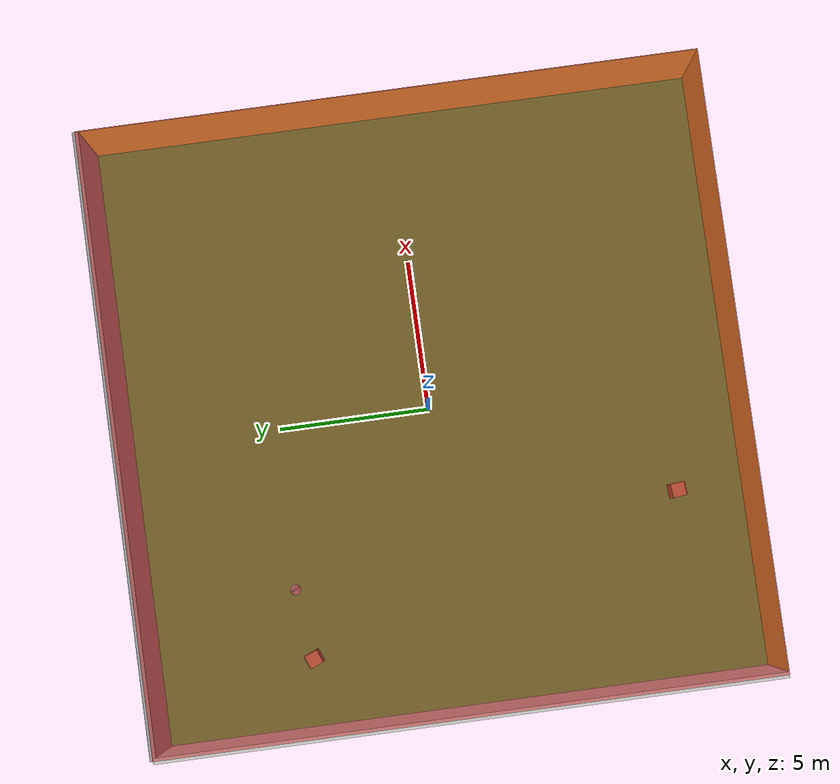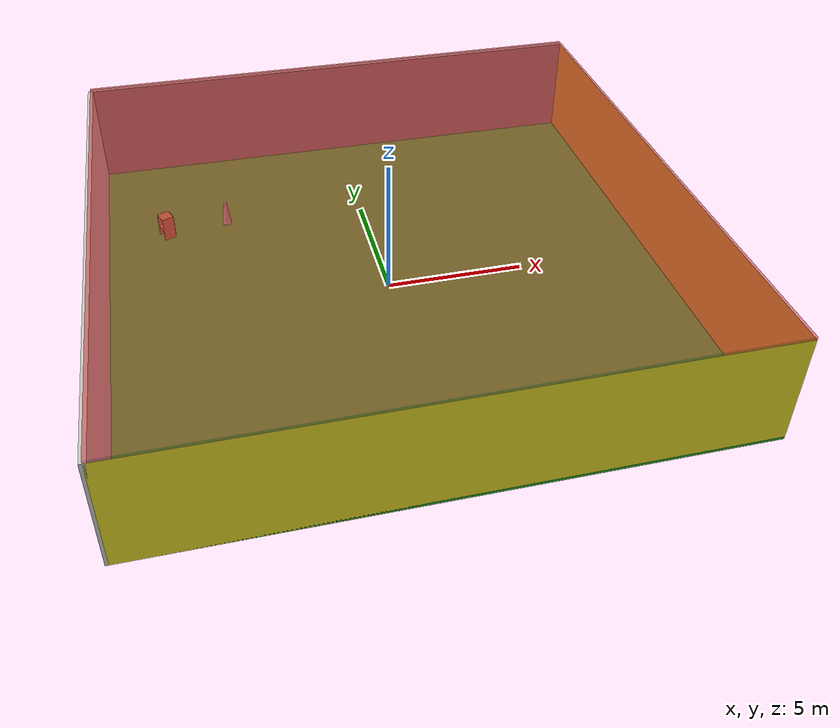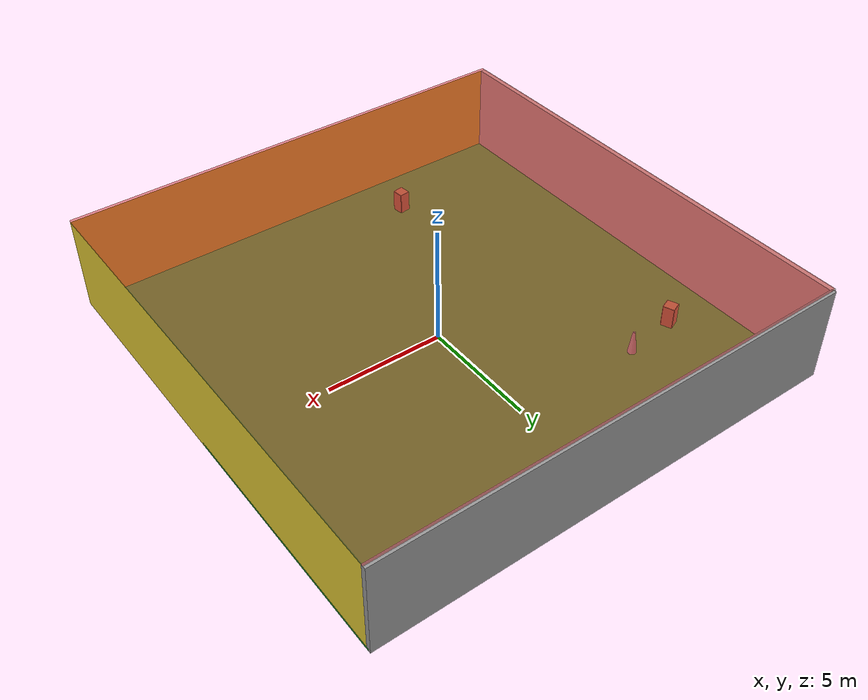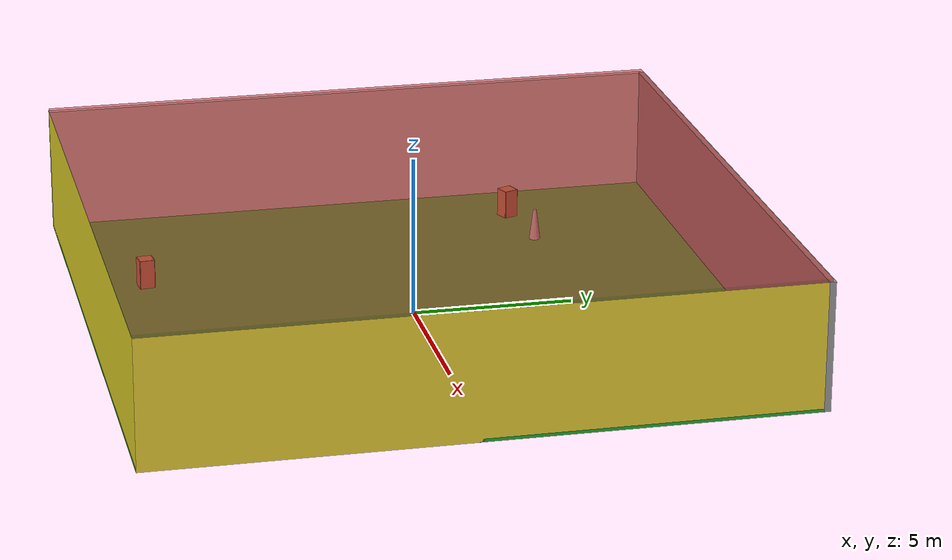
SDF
<sdf version="1.4">
 <world name="default">
  <physics type="ode">
   <max_step_size>0.001</max_step_size>
   <real_time_factor>1</real_time_factor>
   <real_time_update_rate>1000</real_time_update_rate>
   <gravity>0 0 -9.8</gravity>
  </physics>
  <scene><ambient>0.4 0.4 0.4 1</ambient><background>0.7 0.7 0.7 1</background><shadows>1</shadows></scene>
  <model name="Surrounding">
   <static>1</static>
   <link name="Ceiling">
    <collision name="Ceiling_Collision"><geometry><box><size>20 20 0.1</size></box></geometry></collision>
    <visual name="Ceiling_Visual">
     <geometry><box><size>20 20 0.1</size></box></geometry>
     <material>
      <script><uri>file://media/materials/scripts/gazebo.material</uri><name>Gazebo/RedTransparent</name></script>
     </material>
    </visual>
    <pose>0 0 4.05 0 0 0</pose>
   </link>
   <link name="Wall_South">
    <collision name="Wall_South_Collision">
     <geometry><box><size>20 0 4</size></box></geometry>
     <pose>0 0 2 0 -0 0</pose>
    </collision>
    <visual name="Wall_South_Visual">
     <pose>0 0 2 0 -0 0</pose>
     <geometry><box><size>20 0 4</size></box></geometry>
     <material>
      <script><uri>file://media/materials/scripts/gazebo.material</uri><name>Gazebo/Yellow</name></script>
     </material>
    </visual>
    <velocity_decay><linear>0</linear><angular>0</angular></velocity_decay>
    <pose>0 -10 0 0 -0 0</pose>
   </link>
   <link name="Wall_East">
    <collision name="Wall_21_Collision">
     <geometry><box><size>20 0 4</size></box></geometry>
     <pose>0 0 2 0 -0 0</pose>
    </collision>
    <visual name="Wall_21_Visual">
     <pose>0 0 2 0 -0 0</pose>
     <geometry><box><size>20 0 4</size></box></geometry>
     <material>
      <script><uri>file://media/materials/scripts/gazebo.material</uri><name>Gazebo/ZincYellow</name></script>
     </material>
    </visual>
    <velocity_decay><linear>0</linear><angular>0</angular></velocity_decay>
    <pose>10 0 0 0 -0 1.5708</pose>
   </link>
   <link name="Wall_North">
    <collision name="Wall_22_Collision">
     <geometry><box><size>20 0.2 4</size></box></geometry>
     <pose>0 0 2 0 -0 0</pose>
    </collision>
    <visual name="Wall_22_Visual">
     <pose>0 0 2 0 -0 0</pose>
     <geometry><box><size>20 0.2 4</size></box></geometry>
     <material>
      <script><uri>file://media/materials/scripts/gazebo.material</uri><name>Gazebo/Grey</name></script>
     </material>
    </visual>
    <velocity_decay><linear>0</linear><angular>0</angular></velocity_decay>
    <pose>0 10 0 0 -0 0</pose>
   </link>
   <link name="Wall_West">
    <collision name="Wall_23_Collision">
     <geometry><box><size>20 0.2 4</size></box></geometry>
     <pose>0 0 2 0 -0 0</pose>
    </collision>
    <visual name="Wall_23_Visual">
     <pose>0 0 2 0 -0 0</pose>
     <geometry><box><size>20 0.2 4</size></box></geometry>
     <material>
      <script><uri>file://media/materials/scripts/gazebo.material</uri><name>Gazebo/CeilingTiled</name></script>
     </material>
    </visual>
    <velocity_decay><linear>0</linear><angular>0</angular></velocity_decay>
    <pose>-10 0 0 0 0 -1.5708</pose>
   </link>
   <link name="Ground_link">
    <collision name="collision">
     <pose>0 0 .05 0 -0 0</pose>
     <geometry><box><size>20 20 0.1</size></box></geometry>
    </collision>
    <visual name="visual">
     <pose>0 0 .05 0 -0 0</pose>
     <geometry><box><size>20 20 0.1</size></box></geometry>
     <material>
      <script><uri>file://media/materials/scripts/gazebo.material</uri><name>Gazebo/GreenGlow</name></script>
     </material>
    </visual>
   </link>
   <static>1</static>
  </model>
  <spherical_coordinates>
   <surface_model>EARTH_WGS84</surface_model>
   <latitude_deg>0</latitude_deg>
   <longitude_deg>0</longitude_deg>
   <elevation>0</elevation>
   <heading_deg>0</heading_deg>
  </spherical_coordinates>
  <light name="lightball_0" type="diffuse">
   <diffuse>0.8 0.8 0.8 1</diffuse>
   <specular>0.2 0.2 0.2 1</specular>
   <attenuation>
    <range>100</range>
    <constant>0.7</constant>
    <linear>0.01</linear>
    <quadratic>0.001</quadratic>
   </attenuation>
   <direction>-0.5 0.1 -0.9</direction>
   <pose>-8.57807523934 -0.785827906029 2.80492997397 0 0 0</pose>
  </light>
  <light name="lightball_1" type="diffuse">
   <diffuse>0.8 0.8 0.8 1</diffuse>
   <specular>0.2 0.2 0.2 1</specular>
   <attenuation>
    <range>100</range>
    <constant>0.7</constant>
    <linear>0.01</linear>
    <quadratic>0.001</quadratic>
   </attenuation>
   <direction>-0.5 0.1 -0.9</direction>
   <pose>-6.25146843242 -4.05559062928 1.62503390957 0 0 0</pose>
  </light>
  <light name="lightball_2" type="diffuse">
   <diffuse>0.8 0.8 0.8 1</diffuse>
   <specular>0.2 0.2 0.2 1</specular>
   <attenuation>
    <range>100</range>
    <constant>0.7</constant>
    <linear>0.01</linear>
    <quadratic>0.001</quadratic>
   </attenuation>
   <direction>-0.5 0.1 -0.9</direction>
   <pose>3.08097403419 -6.59106941689 2.64953770805 0 0 0</pose>
  </light>
  <light name="lightball_3" type="diffuse">
   <diffuse>0.8 0.8 0.8 1</diffuse>
   <specular>0.2 0.2 0.2 1</specular>
   <attenuation>
    <range>100</range>
    <constant>0.7</constant>
    <linear>0.01</linear>
    <quadratic>0.001</quadratic>
   </attenuation>
   <direction>-0.5 0.1 -0.9</direction>
   <pose>-2.37260780409 2.53695940593 1.85305976628 0 0 0</pose>
  </light>
  <light name="lightball_4" type="diffuse">
   <diffuse>0.8 0.8 0.8 1</diffuse>
   <specular>0.2 0.2 0.2 1</specular>
   <attenuation>
    <range>100</range>
    <constant>0.7</constant>
    <linear>0.01</linear>
    <quadratic>0.001</quadratic>
   </attenuation>
   <direction>-0.5 0.1 -0.9</direction>
   <pose>4.00928380047 8.30117713647 1.54680737771 0 0 0</pose>
  </light>
  <light name="lightball_5" type="diffuse">
   <diffuse>0.8 0.8 0.8 1</diffuse>
   <specular>0.2 0.2 0.2 1</specular>
   <attenuation>
    <range>100</range>
    <constant>0.7</constant>
    <linear>0.01</linear>
    <quadratic>0.001</quadratic>
   </attenuation>
   <direction>-0.5 0.1 -0.9</direction>
   <pose>-3.59707516111 -5.32629634006 2.20388647511 0 0 0</pose>
  </light>
  <light name="lightball_6" type="diffuse">
   <diffuse>0.8 0.8 0.8 1</diffuse>
   <specular>0.2 0.2 0.2 1</specular>
   <attenuation>
    <range>100</range>
    <constant>0.7</constant>
    <linear>0.01</linear>
    <quadratic>0.001</quadratic>
   </attenuation>
   <direction>-0.5 0.1 -0.9</direction>
   <pose>-6.4211733495 -8.38000318711 1.68617742171 0 0 0</pose>
  </light>
  <include><uri>model://cabinet</uri><pose>-7.67767241277 4.82553994877 0 0 0 0.383213011726</pose></include>
  <include><uri>model://cabinet</uri><pose>-3.78197788762 -7.78844190264 0 0 0 0.106814230678</pose></include>
  <include>
   <uri>model://construction_cone</uri>
   <pose>-5.35641418007 5.17824538588 0 0 0 1.77938973479</pose>
  </include>
 </world>
</sdf>

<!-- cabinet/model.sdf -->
<sdf version="1.5">
  <model name="cabinet">
    <static>true</static>
    <link name="cabinet_bottom_plate">
      <inertial>
        <pose>0 0 -1 0 0 0</pose>
        <inertia>
          <ixx>2.050000</ixx>
          <ixy>0</ixy>
          <ixz>0</ixz>
          <iyy>2.050000</iyy>
          <iyz>0</iyz>
          <izz>2.050000</izz>
        </inertia>
        <mass>25.000000</mass>
      </inertial>
      <collision name="cabinet_bottom_plate_geom">
        <pose>0 0 0.010000 0 0 0</pose>
        <geometry>
          <box>
            <size>0.450000 0.450000 0.020000</size>
          </box>
        </geometry>
      </collision>
      <visual name="cabinet_bottom_plate_geom_visual">
        <pose>0 0 0.010000 0 0 0</pose>
        <geometry>
          <box>
            <size>0.450000 0.450000 0.020000</size>
          </box>
        </geometry>
        <material>
          <script>
            <uri>model://media/materials/scripts/gazebo.material</uri>
            <name>Gazebo/Wood</name>
          </script>
        </material>
      </visual>
      <collision name="cabinet_bottom_plate_geom_cabinet_back_plate">
        <pose>0.235000 0 0.510000 0 0 0</pose>
        <geometry>
          <box>
            <size>0.020000 0.450000 1.020000</size>
          </box>
        </geometry>
      </collision>
      <visual name="cabinet_bottom_plate_geom_cabinet_back_plate_visual">
        <pose>0.235000 0 0.510000 0 0 0</pose>
        <geometry>
          <box>
            <size>0.020000 0.450000 1.020000</size>
          </box>
        </geometry>
        <material>
          <script>
            <uri>model://media/materials/scripts/gazebo.material</uri>
            <name>Gazebo/Wood</name>
          </script>
        </material>
      </visual>
      <collision name="cabinet_bottom_plate_geom_cabinet_left_plate">
        <pose>0 0.235000 0.510000 0 0 0</pose>
        <geometry>
          <box>
            <size>0.450000 0.020000 1.020000</size>
          </box>
        </geometry>
      </collision>
      <visual name="cabinet_bottom_plate_geom_cabinet_left_plate_visual">
        <pose>0 0.235000 0.510000 0 0 0</pose>
        <geometry>
          <box>
            <size>0.450000 0.020000 1.020000</size>
          </box>
        </geometry>
        <material>
          <script>
            <uri>model://media/materials/scripts/gazebo.material</uri>
            <name>Gazebo/Wood</name>
          </script>
        </material>
      </visual>
      <collision name="cabinet_bottom_plate_geom_cabinet_middle_plate">
        <pose>0 0 0.510000 0 0 0</pose>
        <geometry>
          <box>
            <size>0.450000 0.450000 0.020000</size>
          </box>
        </geometry>
      </collision>
      <visual name="cabinet_bottom_plate_geom_cabinet_middle_plate_visual">
        <pose>0 0 0.510000 0 0 0</pose>
        <geometry>
          <box>
            <size>0.450000 0.450000 0.020000</size>
          </box>
        </geometry>
        <material>
          <script>
            <uri>model://media/materials/scripts/gazebo.material</uri>
            <name>Gazebo/Wood</name>
          </script>
        </material>
      </visual>
      <collision name="cabinet_bottom_plate_geom_cabinet_right_plate">
        <pose>0 -0.235000 0.510000 0 0 0</pose>
        <geometry>
          <box>
            <size>0.450000 0.020000 1.020000</size>
          </box>
        </geometry>
      </collision>
      <visual name="cabinet_bottom_plate_geom_cabinet_right_plate_visual">
        <pose>0 -0.235000 0.510000 0 0 0</pose>
        <geometry>
          <box>
            <size>0.450000 0.020000 1.020000</size>
          </box>
        </geometry>
        <material>
          <script>
            <uri>model://media/materials/scripts/gazebo.material</uri>
            <name>Gazebo/Wood</name>
          </script>
        </material>
      </visual>
      <collision name="cabinet_bottom_plate_geom_cabinet_top_plate">
        <pose>0 0 1.010000 0 0 0</pose>
        <geometry>
          <box>
            <size>0.450000 0.450000 0.020000</size>
          </box>
        </geometry>
      </collision>
      <visual name="cabinet_bottom_plate_geom_cabinet_top_plate_visual">
        <pose>0 0 1.010000 0 0 0</pose>
        <geometry>
          <box>
            <size>0.450000 0.450000 0.020000</size>
          </box>
        </geometry>
        <material>
          <script>
            <uri>model://media/materials/scripts/gazebo.material</uri>
            <name>Gazebo/Wood</name>
          </script>
        </material>
      </visual>
    </link>
  </model>
</sdf>

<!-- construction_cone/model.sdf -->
<sdf version="1.5">
  <model name="Construction Cone">
    <link name="link">
      <collision name="collision">
        <geometry>
          <mesh>
            <scale>10 10 10</scale>
            <uri>file://isr-testbed/construction_cone/meshes/construction_cone.dae</uri>
          </mesh>
        </geometry>
      </collision>
      <visual name="visual">
        <geometry>
          <mesh>
            <scale>10 10 10</scale>
            <uri>file://isr-testbed/construction_cone/meshes/construction_cone.dae</uri>
          </mesh>
        </geometry>
      </visual>
    </link>
  </model>
</sdf>
